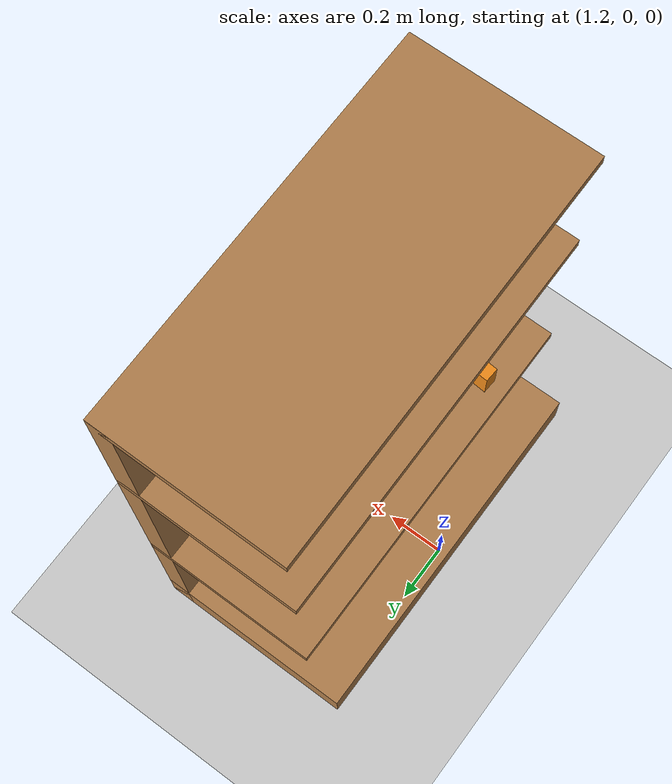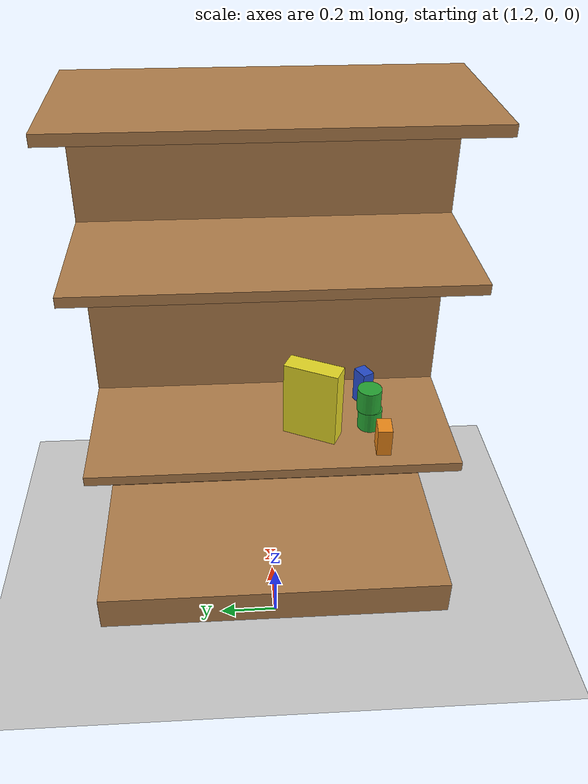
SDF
<sdf version="1.5">
 <world name="default">
  <light name="sun" type="directional">
   <pose>0 0 10 0 -0 0</pose>
   <diffuse>0.8 0.8 0.8 1</diffuse>
   <specular>0.2 0.2 0.2 1</specular>
   <attenuation>
    <range>1000</range>
    <constant>0.9</constant>
    <linear>0.01</linear>
    <quadratic>0.001</quadratic>
   </attenuation>
   <direction>-0.5 0.1 -0.9</direction>
  </light>
  <model name="ground_plane">
   <static>1</static>
   <link name="link">
    <collision name="collision">
     <geometry><plane><normal>0 0 1</normal><size>100 100</size></plane></geometry>
     <surface><friction><ode><mu>100</mu><mu2>50</mu2></ode></friction></surface>
    </collision>
    <visual name="visual">
     <cast_shadows>0</cast_shadows>
     <geometry><plane><normal>0 0 1</normal><size>100 100</size></plane></geometry>
     <material>
      <script><uri>file://media/materials/scripts/gazebo.material</uri><name>Gazebo/Grey</name></script>
     </material>
    </visual>
   </link>
  </model>
  <physics name="default_physics" default="0" type="ode">
   <real_time_update_rate>0</real_time_update_rate>
   <max_step_size>0.001</max_step_size>
   <real_time_factor>1</real_time_factor>
   <gravity>0 0 -9.8</gravity>
   <magnetic_field>5.5645e-06 2.28758e-05 -4.23884e-05</magnetic_field>
  </physics>
  <plugin name="scene_dynamics_anticipation" filename="libscene_dynamics_anticipation_gazebo_plugin.so"/>
  <plugin name="sda_contacts" filename="libsda_contact_plugin.so"/>
  <scene><ambient>0.4 0.4 0.4 1</ambient><background>0.7 0.7 0.7 1</background><shadows>1</shadows></scene>
  <spherical_coordinates>
   <surface_model>EARTH_WGS84</surface_model>
   <latitude_deg>0</latitude_deg>
   <longitude_deg>0</longitude_deg>
   <elevation>0</elevation>
   <heading_deg>0</heading_deg>
  </spherical_coordinates>
  <model name="shopping_rack">
   <link name="shopping_rack">
    <inertial>
     <pose>0 0.091 0.9345 0 -0 0</pose>
     <mass>25</mass>
     <inertia>
      <ixx>10.8688</ixx>
      <ixy>0</ixy>
      <ixz>0</ixz>
      <iyy>13.3504</iyy>
      <iyz>-0.172763</iyz>
      <izz>4.3451</izz>
     </inertia>
    </inertial>
    <collision name="shopping_rack_collision">
     <pose>0 0.305 0.9 0 -0 0</pose>
     <geometry><box><size>1.28 0.08 1.8</size></box></geometry>
     <surface><friction><ode><mu>100</mu><mu2>100</mu2></ode></friction></surface>
    </collision>
    <collision name="shopping_rack_collision_shopping_rack_1">
     <pose>0 0 0.0675 0 -0 0</pose>
     <geometry><box><size>1.28 0.69 0.135</size></box></geometry>
     <surface><friction><ode><mu>100</mu><mu2>100</mu2></ode></friction></surface>
    </collision>
    <collision name="shopping_rack_collision_shopping_rack_2">
     <pose>0 0.05 0.615 0 -0 0</pose>
     <geometry><box><size>1.28 0.59 0.035</size></box></geometry>
     <surface><friction><ode><mu>100</mu><mu2>100</mu2></ode></friction></surface>
    </collision>
    <collision name="shopping_rack_collision_shopping_rack_3">
     <pose>0 0.05 1.305 0 -0 0</pose>
     <geometry><box><size>1.28 0.59 0.035</size></box></geometry>
     <surface><friction><ode><mu>100</mu><mu2>100</mu2></ode></friction></surface>
    </collision>
    <collision name="shopping_rack_collision_shopping_rack_4">
     <pose>0 0.05 1.785 0 -0 0</pose>
     <geometry><box><size>1.28 0.59 0.035</size></box></geometry>
     <surface><friction><ode><mu>100</mu><mu2>100</mu2></ode></friction></surface>
    </collision>
    <visual name="shopping_rack_visual">
     <pose>0 0.305 0.9 0 -0 0</pose>
     <geometry><box><size>1.28 0.08 1.8</size></box></geometry>
     <material><script><name>Gazebo/Wood</name><uri>__default__</uri></script></material>
    </visual>
    <visual name="shopping_rack_visual_shopping_rack_1">
     <pose>0 0 0.0675 0 -0 0</pose>
     <geometry><box><size>1.28 0.69 0.135</size></box></geometry>
     <material><script><name>Gazebo/Wood</name><uri>__default__</uri></script></material>
    </visual>
    <visual name="shopping_rack_visual_shopping_rack_2">
     <pose>0 0.05 0.615 0 -0 0</pose>
     <geometry><box><size>1.28 0.59 0.035</size></box></geometry>
     <material><script><name>Gazebo/Wood</name><uri>__default__</uri></script></material>
    </visual>
    <visual name="shopping_rack_visual_shopping_rack_3">
     <pose>0 0.05 1.305 0 -0 0</pose>
     <geometry><box><size>1.28 0.59 0.035</size></box></geometry>
     <material><script><name>Gazebo/Wood</name><uri>__default__</uri></script></material>
    </visual>
    <visual name="shopping_rack_visual_shopping_rack_4">
     <pose>0 0.05 1.785 0 -0 0</pose>
     <geometry><box><size>1.28 0.59 0.035</size></box></geometry>
     <material><script><name>Gazebo/Wood</name><uri>__default__</uri></script></material>
    </visual>
   </link>
   <joint name="shopping_rack_joint" type="revolute">
    <child>shopping_rack</child>
    <parent>world</parent>
    <axis>
     <limit><lower>0</lower><upper>0</upper></limit>
     <dynamics>
      <damping>0</damping>
      <friction>0</friction>
      <spring_reference>0</spring_reference>
      <spring_stiffness>0</spring_stiffness>
     </dynamics>
     <use_parent_model_frame>1</use_parent_model_frame>
     <xyz>0 0 1</xyz>
    </axis>
   </joint>
   <pose>1.5 -0 0 -0 -0 -1.57</pose>
  </model>
  <model name="shopping-cornflakes-box-2-106">
   <link name="link">
    <inertial>
     <mass>0.5</mass>
     <inertia>
      <ixx>0.00370833</ixx>
      <ixy>0</ixy>
      <ixz>0</ixz>
      <iyy>0.00508854</iyy>
      <iyz>0</iyz>
      <izz>0.00178854</izz>
     </inertia>
    </inertial>
    <collision name="link_collision"><geometry><box><size>0.195 0.07 0.29</size></box></geometry></collision>
    <visual name="link_visual">
     <geometry><box><size>0.195 0.07 0.29</size></box></geometry>
     <material><script><name>Gazebo/YellowGlow</name><uri>__default__</uri></script></material>
    </visual>
   </link>
   <pose>1.4533 -0.145035 0.77 0 -0 1.10463</pose>
  </model>
  <model name="shopping-jodsalz-salt-box-4-108">
   <link name="link">
    <inertial>
     <mass>0.51</mass>
     <inertia>
      <ixx>0.000919062</ixx>
      <ixy>0</ixy>
      <ixz>0</ixz>
      <iyy>0.000986</iyy>
      <iyz>0</iyz>
      <izz>0.000239062</izz>
     </inertia>
    </inertial>
    <collision name="link_collision"><geometry><box><size>0.06 0.045 0.14</size></box></geometry></collision>
    <visual name="link_visual">
     <geometry><box><size>0.06 0.045 0.14</size></box></geometry>
     <material><script><name>Gazebo/BlueGlow</name><uri>__default__</uri></script></material>
    </visual>
   </link>
   <pose>1.63148 -0.350983 0.695 0 -0 0.480266</pose>
  </model>
  <model name="shopping-mexico-mix-can-0-109">
   <link name="link">
    <inertial>
     <mass>0.1</mass>
     <inertia>
      <ixx>0.000105365</ixx>
      <ixy>0</ixy>
      <ixz>0</ixz>
      <iyy>0.000105365</iyy>
      <iyz>0</iyz>
      <izz>9.03125e-05</izz>
     </inertia>
    </inertial>
    <collision name="link_collision">
     <geometry><cylinder><length>0.085</length><radius>0.0425</radius></cylinder></geometry>
    </collision>
    <visual name="link_visual">
     <geometry><cylinder><length>0.085</length><radius>0.0425</radius></cylinder></geometry>
     <material><script><name>Gazebo/GreenGlow</name><uri>__default__</uri></script></material>
    </visual>
   </link>
   <pose>1.47932 -0.353365 0.6675 0 -0 0.481343</pose>
  </model>
  <model name="shopping-mexico-mix-can-1-110">
   <link name="link">
    <inertial>
     <mass>0.1</mass>
     <inertia>
      <ixx>0.000105365</ixx>
      <ixy>0</ixy>
      <ixz>0</ixz>
      <iyy>0.000105365</iyy>
      <iyz>0</iyz>
      <izz>9.03125e-05</izz>
     </inertia>
    </inertial>
    <collision name="link_collision">
     <geometry><cylinder><length>0.085</length><radius>0.0425</radius></cylinder></geometry>
    </collision>
    <visual name="link_visual">
     <geometry><cylinder><length>0.085</length><radius>0.0425</radius></cylinder></geometry>
     <material><script><name>Gazebo/GreenGlow</name><uri>__default__</uri></script></material>
    </visual>
   </link>
   <pose>1.4731 -0.345717 0.7575 0 -0 0.357441</pose>
  </model>
  <model name="shopping-tomatosauce-box-5-111">
   <link name="link">
    <inertial>
     <mass>0.4</mass>
     <inertia>
      <ixx>0.000486667</ixx>
      <ixy>0</ixy>
      <ixz>0</ixz>
      <iyy>0.000590833</iyy>
      <iyz>0</iyz>
      <izz>0.000270833</izz>
     </inertia>
    </inertial>
    <collision name="link_collision"><geometry><box><size>0.075 0.05 0.11</size></box></geometry></collision>
    <visual name="link_visual">
     <geometry><box><size>0.075 0.05 0.11</size></box></geometry>
     <material><script><name>Gazebo/Orange</name><uri>__default__</uri></script></material>
    </visual>
   </link>
   <pose>1.34808 -0.381068 0.68 0 0 -0.07143</pose>
  </model>
 </world>
</sdf>
